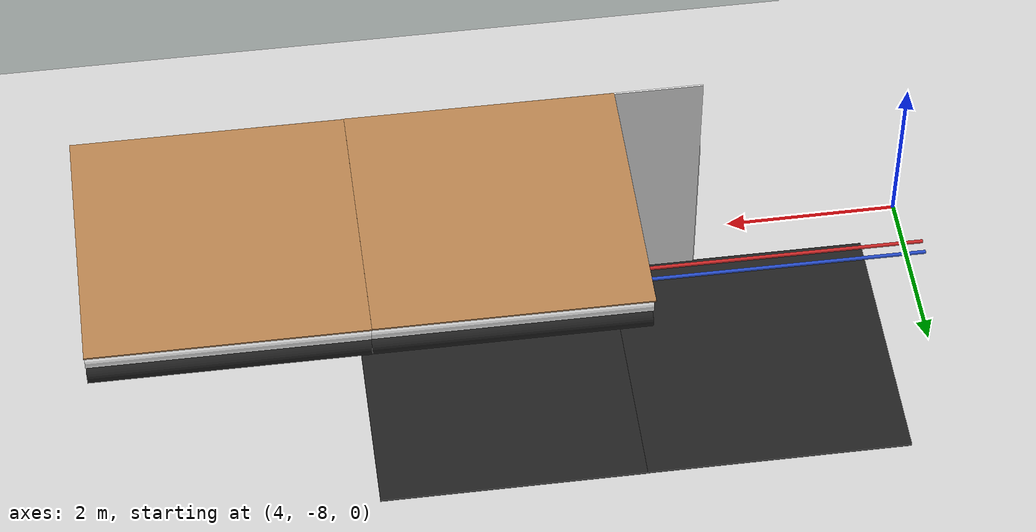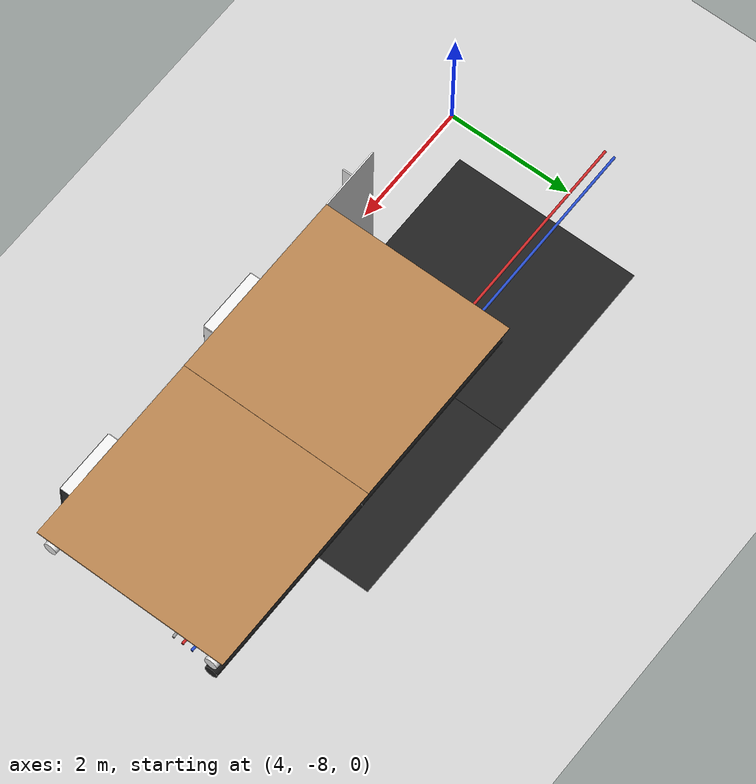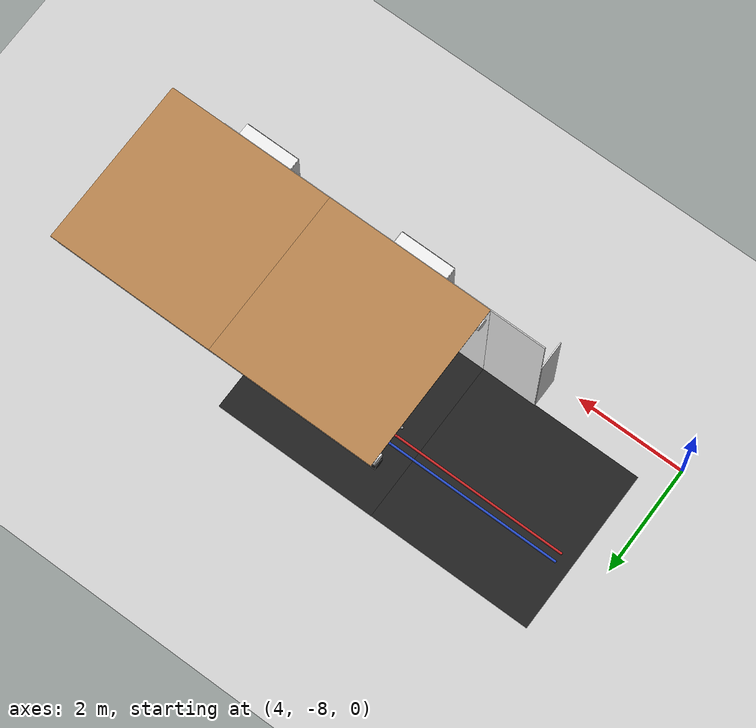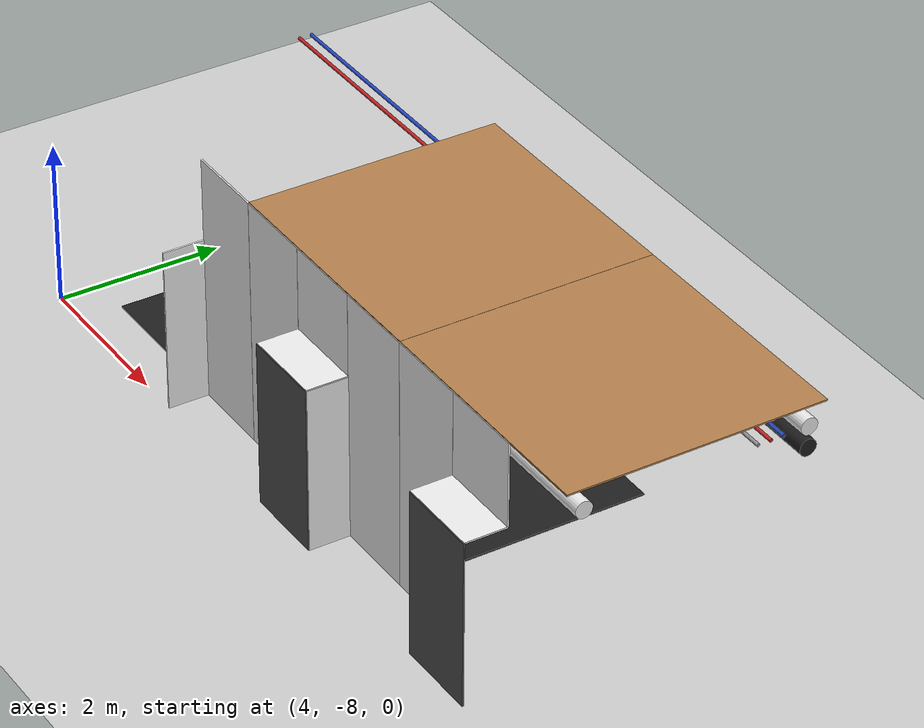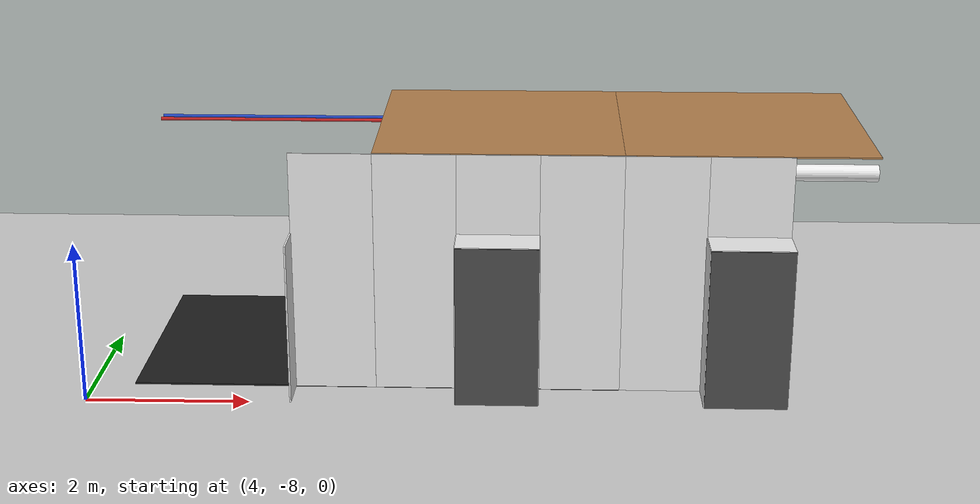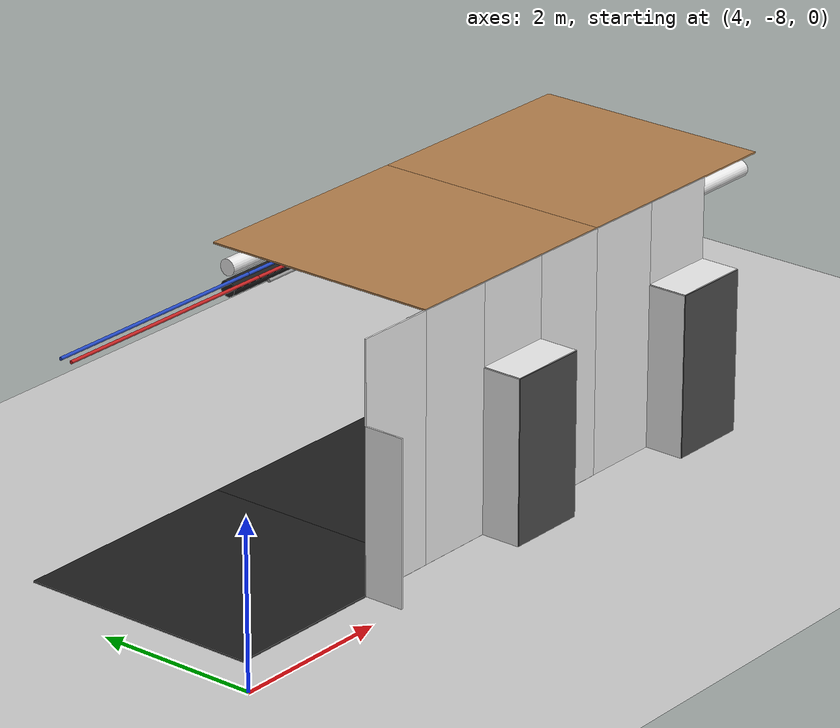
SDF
<sdf version="1.6">
 <world name="default">
  <model name="ground_plane">
   <static>1</static>
   <link name="link">
    <collision name="collision">
     <geometry><plane><normal>0 0 1</normal><size>200 200</size></plane></geometry>
     <surface><friction><ode><mu>100</mu><mu2>50</mu2></ode></friction></surface>
    </collision>
    <visual name="visual">
     <cast_shadows>0</cast_shadows>
     <geometry><plane><normal>0 0 1</normal><size>200 200</size></plane></geometry>
     <material>
      <script><uri>file://media/materials/scripts/gazebo.material</uri><name>Gazebo/Grey</name></script>
     </material>
    </visual>
   </link>
  </model>
  <model name="wall_top_4_-2_0_1">
   <static>1</static>
   <pose>12.0 -6.0 3.0 1.57 0.0 1.57</pose>
   <link name="link">
    <collision name="collision"><geometry><box><size>3 0.02 3</size></box></geometry></collision>
    <visual name="visual">
     <material>
      <script><name>Gazebo/Wood</name><uri>file://media/materials/scripts/gazebo.material</uri></script>
     </material>
     <geometry><box><size>3 0.02 3</size></box></geometry>
    </visual>
   </link>
  </model>
  <model name="white_pipe_left_4_-2_0_1">
   <static>1</static>
   <pose>12.0 -6.0 2.76 0.0 0.0 1.57</pose>
   <link name="link_0">
    <visual name="visual">
     <pose>-1.3 0 0 1.57 0 0</pose>
     <geometry><cylinder><radius>0.1</radius><length>3</length></cylinder></geometry>
     <material>
      <script><uri>file://media/materials/scripts/gazebo.material</uri><name>Gazebo/White</name></script>
     </material>
    </visual>
    <collision name="collision">
     <pose>-1.3 0 0 1.57 0 0</pose>
     <geometry><cylinder><radius>0.1</radius><length>3</length></cylinder></geometry>
    </collision>
   </link>
  </model>
  <model name="white_pipe_right_4_-2_0_1">
   <static>1</static>
   <pose>12.0 -6.0 2.76 0.0 0.0 1.57</pose>
   <link name="link_0">
    <visual name="visual">
     <pose>1.3 0 0 1.57 0 0</pose>
     <geometry><cylinder><radius>0.1</radius><length>3</length></cylinder></geometry>
     <material>
      <script><uri>file://media/materials/scripts/gazebo.material</uri><name>Gazebo/White</name></script>
     </material>
    </visual>
    <collision name="collision">
     <pose>1.3 0 0 1.57 0 0</pose>
     <geometry><cylinder><radius>0.1</radius><length>3</length></cylinder></geometry>
    </collision>
   </link>
  </model>
  <model name="black_pipe_right_4_-2_0_1">
   <static>1</static>
   <pose>12.0 -6.0 2.76 0.0 0.0 1.57</pose>
   <link name="link_0">
    <visual name="visual">
     <pose>1.3 0 -0.25 1.57 0 0</pose>
     <geometry><cylinder><radius>0.1</radius><length>3</length></cylinder></geometry>
     <material>
      <script><uri>file://media/materials/scripts/gazebo.material</uri><name>Gazebo/Black</name></script>
     </material>
    </visual>
    <collision name="collision">
     <pose>1.3 0 -0.25 1.57 0 0</pose>
     <geometry><cylinder><radius>0.1</radius><length>3</length></cylinder></geometry>
    </collision>
   </link>
  </model>
  <model name="grey_pipe_right_4_-2_0_1">
   <static>1</static>
   <pose>12.0 -6.0 2.76 0.0 0.0 1.57</pose>
   <link name="link_0">
    <visual name="visual">
     <pose>0.7 0 0 1.57 0 0</pose>
     <geometry><cylinder><radius>0.02</radius><length>3</length></cylinder></geometry>
     <material>
      <script><uri>file://media/materials/scripts/gazebo.material</uri><name>Gazebo/Grey</name></script>
     </material>
    </visual>
    <collision name="collision">
     <pose>0.7 0 0 1.57 0 0</pose>
     <geometry><cylinder><radius>0.02</radius><length>3</length></cylinder></geometry>
    </collision>
   </link>
  </model>
  <model name="red_pipe_right_4_-2_0_1">
   <static>1</static>
   <pose>12.0 -6.0 2.76 0.0 0.0 1.57</pose>
   <link name="link_0">
    <visual name="visual">
     <pose>0.85 0 0 1.57 0 0</pose>
     <geometry><cylinder><radius>0.02</radius><length>3</length></cylinder></geometry>
     <material>
      <script><uri>file://media/materials/scripts/gazebo.material</uri><name>Gazebo/Red</name></script>
     </material>
    </visual>
    <collision name="collision">
     <pose>0.85 0 0 1.57 0 0</pose>
     <geometry><cylinder><radius>0.02</radius><length>3</length></cylinder></geometry>
    </collision>
   </link>
  </model>
  <model name="blue_pipe_right_4_-2_0_1">
   <static>1</static>
   <pose>12.0 -6.0 2.76 0.0 0.0 1.57</pose>
   <link name="link_0">
    <visual name="visual">
     <pose>1 0 0 1.57 0 0</pose>
     <geometry><cylinder><radius>0.02</radius><length>3</length></cylinder></geometry>
     <material>
      <script><uri>file://media/materials/scripts/gazebo.material</uri><name>Gazebo/Blue</name></script>
     </material>
    </visual>
    <collision name="collision">
     <pose>1 0 0 1.57 0 0</pose>
     <geometry><cylinder><radius>0.02</radius><length>3</length></cylinder></geometry>
    </collision>
   </link>
  </model>
  <model name="wall_left_front_left_4_-2_0_1">
   <static>1</static>
   <pose>11.0 -7.5 1.5 0.0 0.0 3.14</pose>
   <link name="link">
    <collision name="collision"><geometry><box><size>1.0 0.02 3</size></box></geometry></collision>
    <visual name="visual">
     <material>
      <script><name>Gazebo/White</name><uri>file://media/materials/scripts/gazebo.material</uri></script>
     </material>
     <geometry><box><size>1.0 0.02 3</size></box></geometry>
    </visual>
   </link>
  </model>
  <model name="wall_left_front_up_4_-2_0_1">
   <static>1</static>
   <pose>12.0 -7.5 2.5 0.0 0.0 3.14</pose>
   <link name="link">
    <collision name="collision"><geometry><box><size>1.0 0.02 1</size></box></geometry></collision>
    <visual name="visual">
     <material>
      <script><name>Gazebo/White</name><uri>file://media/materials/scripts/gazebo.material</uri></script>
     </material>
     <geometry><box><size>1.0 0.02 1</size></box></geometry>
    </visual>
   </link>
  </model>
  <model name="wall_left_inside_back_4_-2_0_1">
   <static>1</static>
   <pose>12.0 -8.0 1.0 0.0 0.0 3.14</pose>
   <link name="link">
    <collision name="collision"><geometry><box><size>1 0.02 2</size></box></geometry></collision>
    <visual name="visual">
     <material>
      <script><name>Gazebo/DarkGrey</name><uri>file://media/materials/scripts/gazebo.material</uri></script>
     </material>
     <geometry><box><size>1 0.02 2</size></box></geometry>
    </visual>
   </link>
  </model>
  <model name="wall_left_inside_left_4_-2_0_1">
   <static>1</static>
   <pose>11.5 -7.75 1.0 0.0 0.0 1.57</pose>
   <link name="link">
    <collision name="collision"><geometry><box><size>0.5 0.02 2</size></box></geometry></collision>
    <visual name="visual">
     <material>
      <script><name>Gazebo/White</name><uri>file://media/materials/scripts/gazebo.material</uri></script>
     </material>
     <geometry><box><size>0.5 0.02 2</size></box></geometry>
    </visual>
   </link>
  </model>
  <model name="wall_left_inside_top_4_-2_0_1">
   <static>1</static>
   <pose>12.0 -7.75 2.0 1.57 0.0 3.14</pose>
   <link name="link">
    <collision name="collision"><geometry><box><size>1 0.02 0.5</size></box></geometry></collision>
    <visual name="visual">
     <material>
      <script><name>Gazebo/White</name><uri>file://media/materials/scripts/gazebo.material</uri></script>
     </material>
     <geometry><box><size>1 0.02 0.5</size></box></geometry>
    </visual>
   </link>
  </model>
  <model name="wall_top_3_-2_0_1">
   <static>1</static>
   <pose>9.0 -6.0 3.0 1.57 0.0 1.57</pose>
   <link name="link">
    <collision name="collision"><geometry><box><size>3 0.02 3</size></box></geometry></collision>
    <visual name="visual">
     <material>
      <script><name>Gazebo/Wood</name><uri>file://media/materials/scripts/gazebo.material</uri></script>
     </material>
     <geometry><box><size>3 0.02 3</size></box></geometry>
    </visual>
   </link>
  </model>
  <model name="white_pipe_left_3_-2_0_1">
   <static>1</static>
   <pose>9.0 -6.0 2.76 0.0 0.0 1.57</pose>
   <link name="link_0">
    <visual name="visual">
     <pose>-1.3 0 0 1.57 0 0</pose>
     <geometry><cylinder><radius>0.1</radius><length>3</length></cylinder></geometry>
     <material>
      <script><uri>file://media/materials/scripts/gazebo.material</uri><name>Gazebo/White</name></script>
     </material>
    </visual>
    <collision name="collision">
     <pose>-1.3 0 0 1.57 0 0</pose>
     <geometry><cylinder><radius>0.1</radius><length>3</length></cylinder></geometry>
    </collision>
   </link>
  </model>
  <model name="white_pipe_right_3_-2_0_1">
   <static>1</static>
   <pose>9.0 -6.0 2.76 0.0 0.0 1.57</pose>
   <link name="link_0">
    <visual name="visual">
     <pose>1.3 0 0 1.57 0 0</pose>
     <geometry><cylinder><radius>0.1</radius><length>3</length></cylinder></geometry>
     <material>
      <script><uri>file://media/materials/scripts/gazebo.material</uri><name>Gazebo/White</name></script>
     </material>
    </visual>
    <collision name="collision">
     <pose>1.3 0 0 1.57 0 0</pose>
     <geometry><cylinder><radius>0.1</radius><length>3</length></cylinder></geometry>
    </collision>
   </link>
  </model>
  <model name="black_pipe_right_3_-2_0_1">
   <static>1</static>
   <pose>9.0 -6.0 2.76 0.0 0.0 1.57</pose>
   <link name="link_0">
    <visual name="visual">
     <pose>1.3 0 -0.25 1.57 0 0</pose>
     <geometry><cylinder><radius>0.1</radius><length>3</length></cylinder></geometry>
     <material>
      <script><uri>file://media/materials/scripts/gazebo.material</uri><name>Gazebo/Black</name></script>
     </material>
    </visual>
    <collision name="collision">
     <pose>1.3 0 -0.25 1.57 0 0</pose>
     <geometry><cylinder><radius>0.1</radius><length>3</length></cylinder></geometry>
    </collision>
   </link>
  </model>
  <model name="grey_pipe_right_3_-2_0_1">
   <static>1</static>
   <pose>9.0 -6.0 2.76 0.0 0.0 1.57</pose>
   <link name="link_0">
    <visual name="visual">
     <pose>0.7 0 0 1.57 0 0</pose>
     <geometry><cylinder><radius>0.02</radius><length>3</length></cylinder></geometry>
     <material>
      <script><uri>file://media/materials/scripts/gazebo.material</uri><name>Gazebo/Grey</name></script>
     </material>
    </visual>
    <collision name="collision">
     <pose>0.7 0 0 1.57 0 0</pose>
     <geometry><cylinder><radius>0.02</radius><length>3</length></cylinder></geometry>
    </collision>
   </link>
  </model>
  <model name="red_pipe_right_3_-2_0_1">
   <static>1</static>
   <pose>9.0 -6.0 2.76 0.0 0.0 1.57</pose>
   <link name="link_0">
    <visual name="visual">
     <pose>0.85 0 0 1.57 0 0</pose>
     <geometry><cylinder><radius>0.02</radius><length>3</length></cylinder></geometry>
     <material>
      <script><uri>file://media/materials/scripts/gazebo.material</uri><name>Gazebo/Red</name></script>
     </material>
    </visual>
    <collision name="collision">
     <pose>0.85 0 0 1.57 0 0</pose>
     <geometry><cylinder><radius>0.02</radius><length>3</length></cylinder></geometry>
    </collision>
   </link>
  </model>
  <model name="blue_pipe_right_3_-2_0_1">
   <static>1</static>
   <pose>9.0 -6.0 2.76 0.0 0.0 1.57</pose>
   <link name="link_0">
    <visual name="visual">
     <pose>1 0 0 1.57 0 0</pose>
     <geometry><cylinder><radius>0.02</radius><length>3</length></cylinder></geometry>
     <material>
      <script><uri>file://media/materials/scripts/gazebo.material</uri><name>Gazebo/Blue</name></script>
     </material>
    </visual>
    <collision name="collision">
     <pose>1 0 0 1.57 0 0</pose>
     <geometry><cylinder><radius>0.02</radius><length>3</length></cylinder></geometry>
    </collision>
   </link>
  </model>
  <model name="wall_bottom_3_-2_0_1">
   <static>1</static>
   <pose>9.0 -6.0 0.0 0.0 0.0 1.57</pose>
   <link name="link">
    <collision name="collision"><geometry><box><size>3 3 0.02</size></box></geometry></collision>
    <visual name="visual">
     <material>
      <script><name>Gazebo/Black</name><uri>file://media/materials/scripts/gazebo.material</uri></script>
     </material>
     <geometry><box><size>3 3 0.02</size></box></geometry>
    </visual>
   </link>
  </model>
  <model name="wall_left_front_left_3_-2_0_1">
   <static>1</static>
   <pose>8.0 -7.5 1.5 0.0 0.0 3.14</pose>
   <link name="link">
    <collision name="collision"><geometry><box><size>1.0 0.02 3</size></box></geometry></collision>
    <visual name="visual">
     <material>
      <script><name>Gazebo/White</name><uri>file://media/materials/scripts/gazebo.material</uri></script>
     </material>
     <geometry><box><size>1.0 0.02 3</size></box></geometry>
    </visual>
   </link>
  </model>
  <model name="wall_left_front_right_3_-2_0_1">
   <static>1</static>
   <pose>10.0 -7.5 1.5 0.0 0.0 3.14</pose>
   <link name="link">
    <collision name="collision"><geometry><box><size>1.0 0.02 3</size></box></geometry></collision>
    <visual name="visual">
     <material>
      <script><name>Gazebo/White</name><uri>file://media/materials/scripts/gazebo.material</uri></script>
     </material>
     <geometry><box><size>1.0 0.02 3</size></box></geometry>
    </visual>
   </link>
  </model>
  <model name="wall_left_front_up_3_-2_0_1">
   <static>1</static>
   <pose>9.0 -7.5 2.5 0.0 0.0 3.14</pose>
   <link name="link">
    <collision name="collision"><geometry><box><size>1.0 0.02 1</size></box></geometry></collision>
    <visual name="visual">
     <material>
      <script><name>Gazebo/White</name><uri>file://media/materials/scripts/gazebo.material</uri></script>
     </material>
     <geometry><box><size>1.0 0.02 1</size></box></geometry>
    </visual>
   </link>
  </model>
  <model name="wall_left_inside_back_3_-2_0_1">
   <static>1</static>
   <pose>9.0 -8.0 1.0 0.0 0.0 3.14</pose>
   <link name="link">
    <collision name="collision"><geometry><box><size>1 0.02 2</size></box></geometry></collision>
    <visual name="visual">
     <material>
      <script><name>Gazebo/DarkGrey</name><uri>file://media/materials/scripts/gazebo.material</uri></script>
     </material>
     <geometry><box><size>1 0.02 2</size></box></geometry>
    </visual>
   </link>
  </model>
  <model name="wall_left_inside_left_3_-2_0_1">
   <static>1</static>
   <pose>8.5 -7.75 1.0 0.0 0.0 1.57</pose>
   <link name="link">
    <collision name="collision"><geometry><box><size>0.5 0.02 2</size></box></geometry></collision>
    <visual name="visual">
     <material>
      <script><name>Gazebo/White</name><uri>file://media/materials/scripts/gazebo.material</uri></script>
     </material>
     <geometry><box><size>0.5 0.02 2</size></box></geometry>
    </visual>
   </link>
  </model>
  <model name="wall_left_inside_right_3_-2_0_1">
   <static>1</static>
   <pose>9.5 -7.75 1.0 0.0 0.0 1.57</pose>
   <link name="link">
    <collision name="collision"><geometry><box><size>0.5 0.02 2</size></box></geometry></collision>
    <visual name="visual">
     <material>
      <script><name>Gazebo/White</name><uri>file://media/materials/scripts/gazebo.material</uri></script>
     </material>
     <geometry><box><size>0.5 0.02 2</size></box></geometry>
    </visual>
   </link>
  </model>
  <model name="wall_left_inside_top_3_-2_0_1">
   <static>1</static>
   <pose>9.0 -7.75 2.0 1.57 0.0 3.14</pose>
   <link name="link">
    <collision name="collision"><geometry><box><size>1 0.02 0.5</size></box></geometry></collision>
    <visual name="visual">
     <material>
      <script><name>Gazebo/White</name><uri>file://media/materials/scripts/gazebo.material</uri></script>
     </material>
     <geometry><box><size>1 0.02 0.5</size></box></geometry>
    </visual>
   </link>
  </model>
  <model name="red_pipe_right_2_-2_0_1">
   <static>1</static>
   <pose>6.0 -6.0 2.76 0.0 0.0 1.57</pose>
   <link name="link_0">
    <visual name="visual">
     <pose>0.85 0 0 1.57 0 0</pose>
     <geometry><cylinder><radius>0.02</radius><length>3</length></cylinder></geometry>
     <material>
      <script><uri>file://media/materials/scripts/gazebo.material</uri><name>Gazebo/Red</name></script>
     </material>
    </visual>
    <collision name="collision">
     <pose>0.85 0 0 1.57 0 0</pose>
     <geometry><cylinder><radius>0.02</radius><length>3</length></cylinder></geometry>
    </collision>
   </link>
  </model>
  <model name="blue_pipe_right_2_-2_0_1">
   <static>1</static>
   <pose>6.0 -6.0 2.76 0.0 0.0 1.57</pose>
   <link name="link_0">
    <visual name="visual">
     <pose>1 0 0 1.57 0 0</pose>
     <geometry><cylinder><radius>0.02</radius><length>3</length></cylinder></geometry>
     <material>
      <script><uri>file://media/materials/scripts/gazebo.material</uri><name>Gazebo/Blue</name></script>
     </material>
    </visual>
    <collision name="collision">
     <pose>1 0 0 1.57 0 0</pose>
     <geometry><cylinder><radius>0.02</radius><length>3</length></cylinder></geometry>
    </collision>
   </link>
  </model>
  <model name="wall_bottom_2_-2_0_1">
   <static>1</static>
   <pose>6.0 -6.0 0.0 0.0 0.0 1.57</pose>
   <link name="link">
    <collision name="collision"><geometry><box><size>3 3 0.02</size></box></geometry></collision>
    <visual name="visual">
     <material>
      <script><name>Gazebo/Black</name><uri>file://media/materials/scripts/gazebo.material</uri></script>
     </material>
     <geometry><box><size>3 3 0.02</size></box></geometry>
    </visual>
   </link>
  </model>
  <model name="wall_left_front_right_2_-2_0_1">
   <static>1</static>
   <pose>7.0 -7.5 1.5 0.0 0.0 3.14</pose>
   <link name="link">
    <collision name="collision"><geometry><box><size>1.0 0.02 3</size></box></geometry></collision>
    <visual name="visual">
     <material>
      <script><name>Gazebo/White</name><uri>file://media/materials/scripts/gazebo.material</uri></script>
     </material>
     <geometry><box><size>1.0 0.02 3</size></box></geometry>
    </visual>
   </link>
  </model>
  <model name="wall_left_inside_right_2_-2_0_1">
   <static>1</static>
   <pose>6.5 -7.75 1.0 0.0 0.0 1.57</pose>
   <link name="link">
    <collision name="collision"><geometry><box><size>0.5 0.02 2</size></box></geometry></collision>
    <visual name="visual">
     <material>
      <script><name>Gazebo/White</name><uri>file://media/materials/scripts/gazebo.material</uri></script>
     </material>
     <geometry><box><size>0.5 0.02 2</size></box></geometry>
    </visual>
   </link>
  </model>
 </world>
</sdf>
